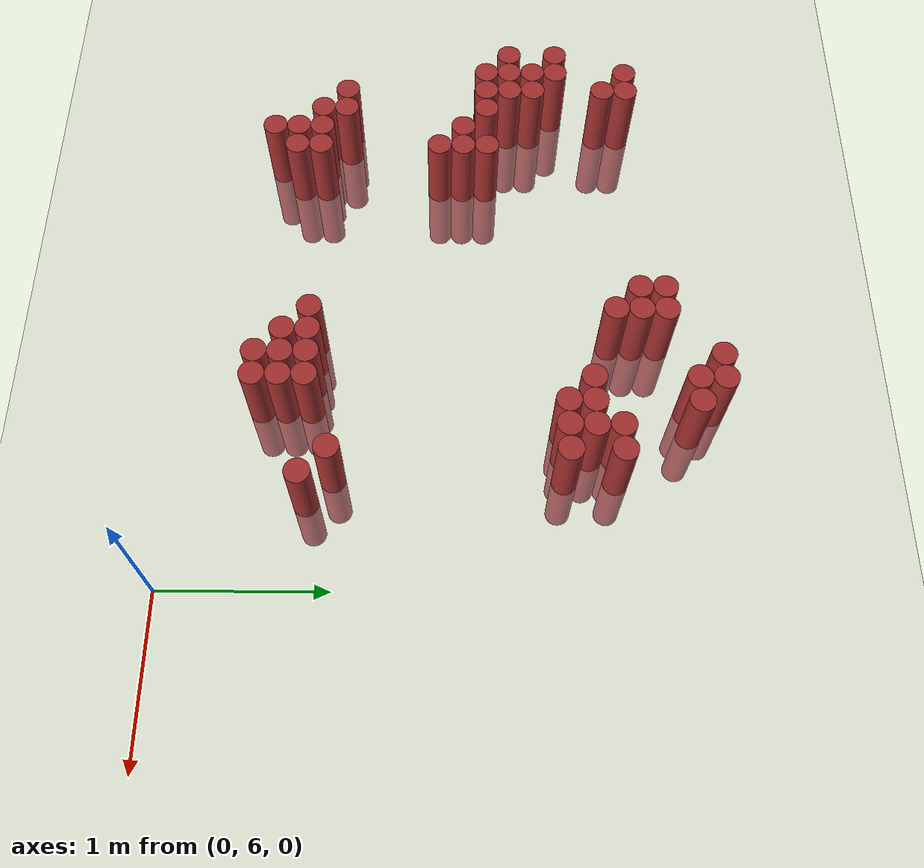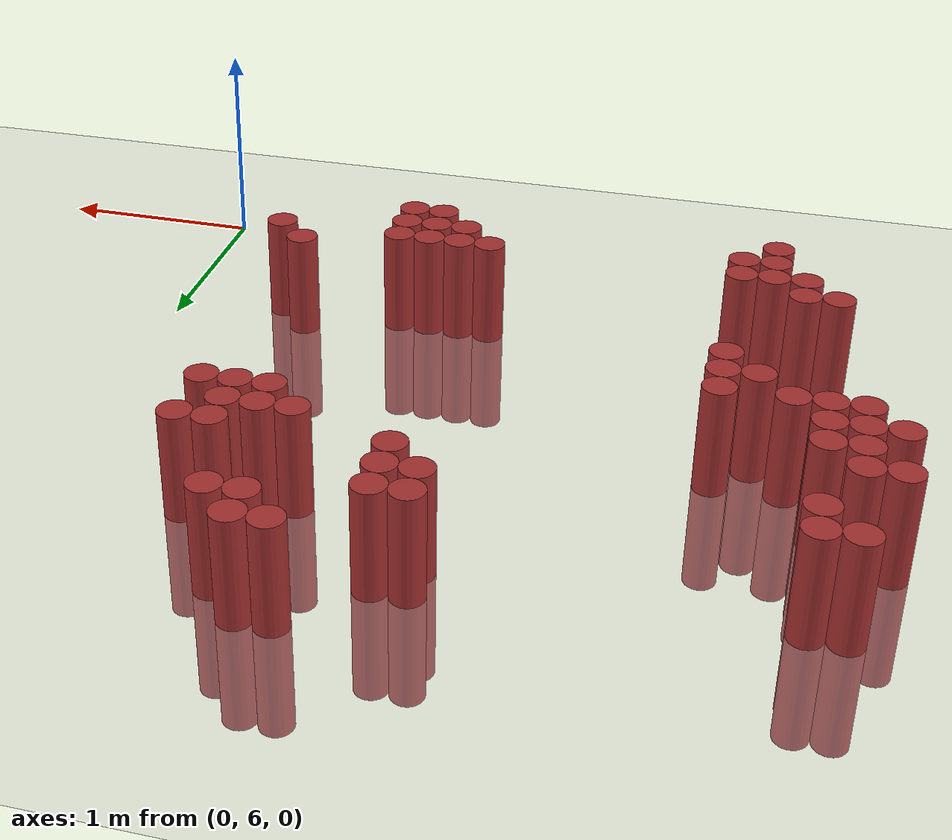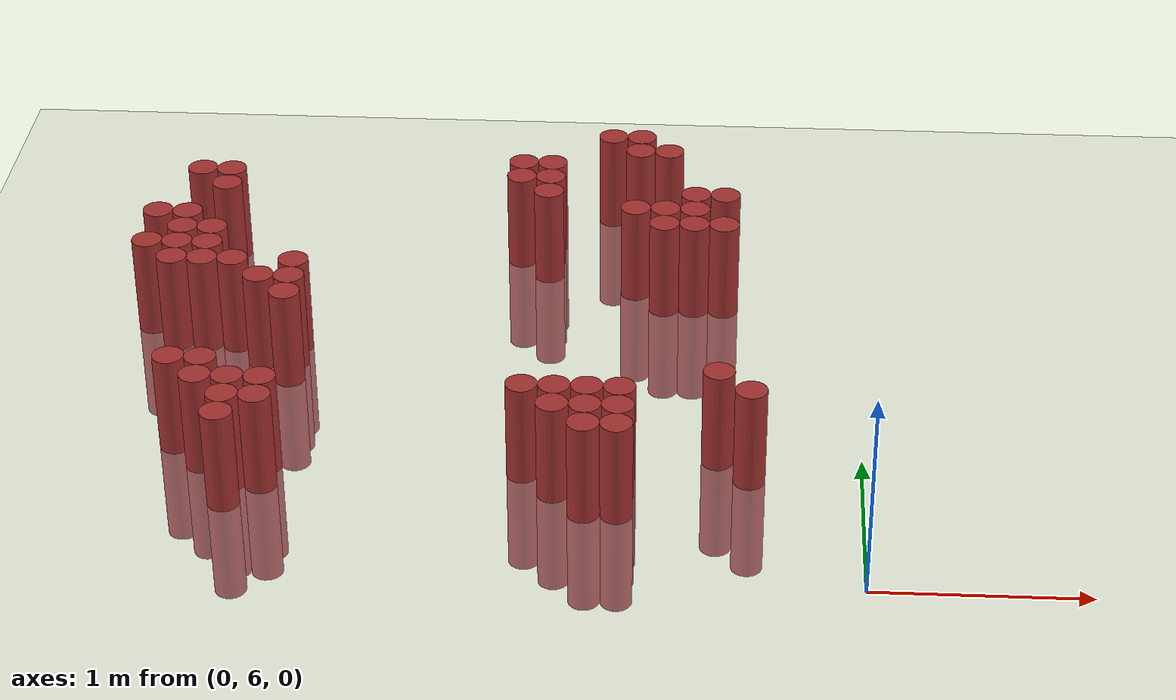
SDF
<sdf version="1.6">
 <world name="default">
  <model name="ground_plane">
   <static>1</static>
   <link name="link">
    <collision name="collision">
     <geometry><plane><normal>0 0 1</normal><size>100 100</size></plane></geometry>
     <surface><friction><ode><mu>100</mu><mu2>50</mu2></ode></friction></surface>
    </collision>
    <visual name="visual">
     <cast_shadows>0</cast_shadows>
     <geometry><plane><normal>0 0 1</normal><size>100 100</size></plane></geometry>
     <material>
      <script><uri>file://media/materials/scripts/gazebo.material</uri><name>Gazebo/Grey</name></script>
     </material>
    </visual>
   </link>
  </model>
  <model name="unit_cylinder_173">
   <static>1</static>
   <pose>-3.525000 8.025000 0.000000 0.000000 0.000000 0.000000</pose>
   <link name="link">
    <inertial>
     <mass>1</mass>
     <inertia><ixx>0.145833</ixx><ixy>0</ixy><ixz>0</ixz><iyy>0.145833</iyy><iyz>0</iyz><izz>0.125</izz></inertia>
    </inertial>
    <collision name="collision">
     <geometry><cylinder><radius>0.075000</radius><length>1</length></cylinder></geometry>
    </collision>
    <visual name="visual">
     <geometry><cylinder><radius>0.075000</radius><length>1</length></cylinder></geometry>
     <material>
      <ambient>0.648000 0.192000 0.192000 1</ambient>
      <diffuse>0.648000 0.192000 0.192000 1</diffuse>
     </material>
     <material>
      <script><name>Gazebo/Grey</name><uri>file://media/materials/scripts/gazebo.material</uri></script>
     </material>
    </visual>
   </link>
  </model>
  <model name="unit_cylinder_174">
   <static>1</static>
   <pose>-3.525000 8.325000 0.000000 0.000000 0.000000 0.000000</pose>
   <link name="link">
    <inertial>
     <mass>1</mass>
     <inertia><ixx>0.145833</ixx><ixy>0</ixy><ixz>0</ixz><iyy>0.145833</iyy><iyz>0</iyz><izz>0.125</izz></inertia>
    </inertial>
    <collision name="collision">
     <geometry><cylinder><radius>0.075000</radius><length>1</length></cylinder></geometry>
    </collision>
    <visual name="visual">
     <geometry><cylinder><radius>0.075000</radius><length>1</length></cylinder></geometry>
     <material>
      <ambient>0.648000 0.192000 0.192000 1</ambient>
      <diffuse>0.648000 0.192000 0.192000 1</diffuse>
     </material>
     <material>
      <script><name>Gazebo/Grey</name><uri>file://media/materials/scripts/gazebo.material</uri></script>
     </material>
    </visual>
   </link>
  </model>
  <model name="unit_cylinder_175">
   <static>1</static>
   <pose>-3.375000 7.875000 0.000000 0.000000 0.000000 0.000000</pose>
   <link name="link">
    <inertial>
     <mass>1</mass>
     <inertia><ixx>0.145833</ixx><ixy>0</ixy><ixz>0</ixz><iyy>0.145833</iyy><iyz>0</iyz><izz>0.125</izz></inertia>
    </inertial>
    <collision name="collision">
     <geometry><cylinder><radius>0.075000</radius><length>1</length></cylinder></geometry>
    </collision>
    <visual name="visual">
     <geometry><cylinder><radius>0.075000</radius><length>1</length></cylinder></geometry>
     <material>
      <ambient>0.648000 0.192000 0.192000 1</ambient>
      <diffuse>0.648000 0.192000 0.192000 1</diffuse>
     </material>
     <material>
      <script><name>Gazebo/Grey</name><uri>file://media/materials/scripts/gazebo.material</uri></script>
     </material>
    </visual>
   </link>
  </model>
  <model name="unit_cylinder_176">
   <static>1</static>
   <pose>-3.375000 8.025000 0.000000 0.000000 0.000000 0.000000</pose>
   <link name="link">
    <inertial>
     <mass>1</mass>
     <inertia><ixx>0.145833</ixx><ixy>0</ixy><ixz>0</ixz><iyy>0.145833</iyy><iyz>0</iyz><izz>0.125</izz></inertia>
    </inertial>
    <collision name="collision">
     <geometry><cylinder><radius>0.075000</radius><length>1</length></cylinder></geometry>
    </collision>
    <visual name="visual">
     <geometry><cylinder><radius>0.075000</radius><length>1</length></cylinder></geometry>
     <material>
      <ambient>0.648000 0.192000 0.192000 1</ambient>
      <diffuse>0.648000 0.192000 0.192000 1</diffuse>
     </material>
     <material>
      <script><name>Gazebo/Grey</name><uri>file://media/materials/scripts/gazebo.material</uri></script>
     </material>
    </visual>
   </link>
  </model>
  <model name="unit_cylinder_177">
   <static>1</static>
   <pose>-3.375000 8.175000 0.000000 0.000000 0.000000 0.000000</pose>
   <link name="link">
    <inertial>
     <mass>1</mass>
     <inertia><ixx>0.145833</ixx><ixy>0</ixy><ixz>0</ixz><iyy>0.145833</iyy><iyz>0</iyz><izz>0.125</izz></inertia>
    </inertial>
    <collision name="collision">
     <geometry><cylinder><radius>0.075000</radius><length>1</length></cylinder></geometry>
    </collision>
    <visual name="visual">
     <geometry><cylinder><radius>0.075000</radius><length>1</length></cylinder></geometry>
     <material>
      <ambient>0.648000 0.192000 0.192000 1</ambient>
      <diffuse>0.648000 0.192000 0.192000 1</diffuse>
     </material>
     <material>
      <script><name>Gazebo/Grey</name><uri>file://media/materials/scripts/gazebo.material</uri></script>
     </material>
    </visual>
   </link>
  </model>
  <model name="unit_cylinder_178">
   <static>1</static>
   <pose>-3.375000 8.325000 0.000000 0.000000 0.000000 0.000000</pose>
   <link name="link">
    <inertial>
     <mass>1</mass>
     <inertia><ixx>0.145833</ixx><ixy>0</ixy><ixz>0</ixz><iyy>0.145833</iyy><iyz>0</iyz><izz>0.125</izz></inertia>
    </inertial>
    <collision name="collision">
     <geometry><cylinder><radius>0.075000</radius><length>1</length></cylinder></geometry>
    </collision>
    <visual name="visual">
     <geometry><cylinder><radius>0.075000</radius><length>1</length></cylinder></geometry>
     <material>
      <ambient>0.648000 0.192000 0.192000 1</ambient>
      <diffuse>0.648000 0.192000 0.192000 1</diffuse>
     </material>
     <material>
      <script><name>Gazebo/Grey</name><uri>file://media/materials/scripts/gazebo.material</uri></script>
     </material>
    </visual>
   </link>
  </model>
  <model name="unit_cylinder_179">
   <static>1</static>
   <pose>-3.375000 8.775000 0.000000 0.000000 0.000000 0.000000</pose>
   <link name="link">
    <inertial>
     <mass>1</mass>
     <inertia><ixx>0.145833</ixx><ixy>0</ixy><ixz>0</ixz><iyy>0.145833</iyy><iyz>0</iyz><izz>0.125</izz></inertia>
    </inertial>
    <collision name="collision">
     <geometry><cylinder><radius>0.075000</radius><length>1</length></cylinder></geometry>
    </collision>
    <visual name="visual">
     <geometry><cylinder><radius>0.075000</radius><length>1</length></cylinder></geometry>
     <material>
      <ambient>0.648000 0.192000 0.192000 1</ambient>
      <diffuse>0.648000 0.192000 0.192000 1</diffuse>
     </material>
     <material>
      <script><name>Gazebo/Grey</name><uri>file://media/materials/scripts/gazebo.material</uri></script>
     </material>
    </visual>
   </link>
  </model>
  <model name="unit_cylinder_181">
   <static>1</static>
   <pose>-3.225000 6.975000 0.000000 0.000000 0.000000 0.000000</pose>
   <link name="link">
    <inertial>
     <mass>1</mass>
     <inertia><ixx>0.145833</ixx><ixy>0</ixy><ixz>0</ixz><iyy>0.145833</iyy><iyz>0</iyz><izz>0.125</izz></inertia>
    </inertial>
    <collision name="collision">
     <geometry><cylinder><radius>0.075000</radius><length>1</length></cylinder></geometry>
    </collision>
    <visual name="visual">
     <geometry><cylinder><radius>0.075000</radius><length>1</length></cylinder></geometry>
     <material>
      <ambient>0.648000 0.192000 0.192000 1</ambient>
      <diffuse>0.648000 0.192000 0.192000 1</diffuse>
     </material>
     <material>
      <script><name>Gazebo/Grey</name><uri>file://media/materials/scripts/gazebo.material</uri></script>
     </material>
    </visual>
   </link>
  </model>
  <model name="unit_cylinder_182">
   <static>1</static>
   <pose>-3.225000 7.875000 0.000000 0.000000 0.000000 0.000000</pose>
   <link name="link">
    <inertial>
     <mass>1</mass>
     <inertia><ixx>0.145833</ixx><ixy>0</ixy><ixz>0</ixz><iyy>0.145833</iyy><iyz>0</iyz><izz>0.125</izz></inertia>
    </inertial>
    <collision name="collision">
     <geometry><cylinder><radius>0.075000</radius><length>1</length></cylinder></geometry>
    </collision>
    <visual name="visual">
     <geometry><cylinder><radius>0.075000</radius><length>1</length></cylinder></geometry>
     <material>
      <ambient>0.648000 0.192000 0.192000 1</ambient>
      <diffuse>0.648000 0.192000 0.192000 1</diffuse>
     </material>
     <material>
      <script><name>Gazebo/Grey</name><uri>file://media/materials/scripts/gazebo.material</uri></script>
     </material>
    </visual>
   </link>
  </model>
  <model name="unit_cylinder_183">
   <static>1</static>
   <pose>-3.225000 8.025000 0.000000 0.000000 0.000000 0.000000</pose>
   <link name="link">
    <inertial>
     <mass>1</mass>
     <inertia><ixx>0.145833</ixx><ixy>0</ixy><ixz>0</ixz><iyy>0.145833</iyy><iyz>0</iyz><izz>0.125</izz></inertia>
    </inertial>
    <collision name="collision">
     <geometry><cylinder><radius>0.075000</radius><length>1</length></cylinder></geometry>
    </collision>
    <visual name="visual">
     <geometry><cylinder><radius>0.075000</radius><length>1</length></cylinder></geometry>
     <material>
      <ambient>0.648000 0.192000 0.192000 1</ambient>
      <diffuse>0.648000 0.192000 0.192000 1</diffuse>
     </material>
     <material>
      <script><name>Gazebo/Grey</name><uri>file://media/materials/scripts/gazebo.material</uri></script>
     </material>
    </visual>
   </link>
  </model>
  <model name="unit_cylinder_184">
   <static>1</static>
   <pose>-3.225000 8.175000 0.000000 0.000000 0.000000 0.000000</pose>
   <link name="link">
    <inertial>
     <mass>1</mass>
     <inertia><ixx>0.145833</ixx><ixy>0</ixy><ixz>0</ixz><iyy>0.145833</iyy><iyz>0</iyz><izz>0.125</izz></inertia>
    </inertial>
    <collision name="collision">
     <geometry><cylinder><radius>0.075000</radius><length>1</length></cylinder></geometry>
    </collision>
    <visual name="visual">
     <geometry><cylinder><radius>0.075000</radius><length>1</length></cylinder></geometry>
     <material>
      <ambient>0.648000 0.192000 0.192000 1</ambient>
      <diffuse>0.648000 0.192000 0.192000 1</diffuse>
     </material>
     <material>
      <script><name>Gazebo/Grey</name><uri>file://media/materials/scripts/gazebo.material</uri></script>
     </material>
    </visual>
   </link>
  </model>
  <model name="unit_cylinder_185">
   <static>1</static>
   <pose>-3.225000 8.625000 0.000000 0.000000 0.000000 0.000000</pose>
   <link name="link">
    <inertial>
     <mass>1</mass>
     <inertia><ixx>0.145833</ixx><ixy>0</ixy><ixz>0</ixz><iyy>0.145833</iyy><iyz>0</iyz><izz>0.125</izz></inertia>
    </inertial>
    <collision name="collision">
     <geometry><cylinder><radius>0.075000</radius><length>1</length></cylinder></geometry>
    </collision>
    <visual name="visual">
     <geometry><cylinder><radius>0.075000</radius><length>1</length></cylinder></geometry>
     <material>
      <ambient>0.648000 0.192000 0.192000 1</ambient>
      <diffuse>0.648000 0.192000 0.192000 1</diffuse>
     </material>
     <material>
      <script><name>Gazebo/Grey</name><uri>file://media/materials/scripts/gazebo.material</uri></script>
     </material>
    </visual>
   </link>
  </model>
  <model name="unit_cylinder_186">
   <static>1</static>
   <pose>-3.225000 8.775000 0.000000 0.000000 0.000000 0.000000</pose>
   <link name="link">
    <inertial>
     <mass>1</mass>
     <inertia><ixx>0.145833</ixx><ixy>0</ixy><ixz>0</ixz><iyy>0.145833</iyy><iyz>0</iyz><izz>0.125</izz></inertia>
    </inertial>
    <collision name="collision">
     <geometry><cylinder><radius>0.075000</radius><length>1</length></cylinder></geometry>
    </collision>
    <visual name="visual">
     <geometry><cylinder><radius>0.075000</radius><length>1</length></cylinder></geometry>
     <material>
      <ambient>0.648000 0.192000 0.192000 1</ambient>
      <diffuse>0.648000 0.192000 0.192000 1</diffuse>
     </material>
     <material>
      <script><name>Gazebo/Grey</name><uri>file://media/materials/scripts/gazebo.material</uri></script>
     </material>
    </visual>
   </link>
  </model>
  <model name="unit_cylinder_190">
   <static>1</static>
   <pose>-3.075000 6.825000 0.000000 0.000000 0.000000 0.000000</pose>
   <link name="link">
    <inertial>
     <mass>1</mass>
     <inertia><ixx>0.145833</ixx><ixy>0</ixy><ixz>0</ixz><iyy>0.145833</iyy><iyz>0</iyz><izz>0.125</izz></inertia>
    </inertial>
    <collision name="collision">
     <geometry><cylinder><radius>0.075000</radius><length>1</length></cylinder></geometry>
    </collision>
    <visual name="visual">
     <geometry><cylinder><radius>0.075000</radius><length>1</length></cylinder></geometry>
     <material>
      <ambient>0.648000 0.192000 0.192000 1</ambient>
      <diffuse>0.648000 0.192000 0.192000 1</diffuse>
     </material>
     <material>
      <script><name>Gazebo/Grey</name><uri>file://media/materials/scripts/gazebo.material</uri></script>
     </material>
    </visual>
   </link>
  </model>
  <model name="unit_cylinder_191">
   <static>1</static>
   <pose>-3.075000 6.975000 0.000000 0.000000 0.000000 0.000000</pose>
   <link name="link">
    <inertial>
     <mass>1</mass>
     <inertia><ixx>0.145833</ixx><ixy>0</ixy><ixz>0</ixz><iyy>0.145833</iyy><iyz>0</iyz><izz>0.125</izz></inertia>
    </inertial>
    <collision name="collision">
     <geometry><cylinder><radius>0.075000</radius><length>1</length></cylinder></geometry>
    </collision>
    <visual name="visual">
     <geometry><cylinder><radius>0.075000</radius><length>1</length></cylinder></geometry>
     <material>
      <ambient>0.648000 0.192000 0.192000 1</ambient>
      <diffuse>0.648000 0.192000 0.192000 1</diffuse>
     </material>
     <material>
      <script><name>Gazebo/Grey</name><uri>file://media/materials/scripts/gazebo.material</uri></script>
     </material>
    </visual>
   </link>
  </model>
  <model name="unit_cylinder_192">
   <static>1</static>
   <pose>-3.075000 7.875000 0.000000 0.000000 0.000000 0.000000</pose>
   <link name="link">
    <inertial>
     <mass>1</mass>
     <inertia><ixx>0.145833</ixx><ixy>0</ixy><ixz>0</ixz><iyy>0.145833</iyy><iyz>0</iyz><izz>0.125</izz></inertia>
    </inertial>
    <collision name="collision">
     <geometry><cylinder><radius>0.075000</radius><length>1</length></cylinder></geometry>
    </collision>
    <visual name="visual">
     <geometry><cylinder><radius>0.075000</radius><length>1</length></cylinder></geometry>
     <material>
      <ambient>0.648000 0.192000 0.192000 1</ambient>
      <diffuse>0.648000 0.192000 0.192000 1</diffuse>
     </material>
     <material>
      <script><name>Gazebo/Grey</name><uri>file://media/materials/scripts/gazebo.material</uri></script>
     </material>
    </visual>
   </link>
  </model>
  <model name="unit_cylinder_193">
   <static>1</static>
   <pose>-2.925000 6.525000 0.000000 0.000000 0.000000 0.000000</pose>
   <link name="link">
    <inertial>
     <mass>1</mass>
     <inertia><ixx>0.145833</ixx><ixy>0</ixy><ixz>0</ixz><iyy>0.145833</iyy><iyz>0</iyz><izz>0.125</izz></inertia>
    </inertial>
    <collision name="collision">
     <geometry><cylinder><radius>0.075000</radius><length>1</length></cylinder></geometry>
    </collision>
    <visual name="visual">
     <geometry><cylinder><radius>0.075000</radius><length>1</length></cylinder></geometry>
     <material>
      <ambient>0.648000 0.192000 0.192000 1</ambient>
      <diffuse>0.648000 0.192000 0.192000 1</diffuse>
     </material>
     <material>
      <script><name>Gazebo/Grey</name><uri>file://media/materials/scripts/gazebo.material</uri></script>
     </material>
    </visual>
   </link>
  </model>
  <model name="unit_cylinder_194">
   <static>1</static>
   <pose>-2.925000 6.675000 0.000000 0.000000 0.000000 0.000000</pose>
   <link name="link">
    <inertial>
     <mass>1</mass>
     <inertia><ixx>0.145833</ixx><ixy>0</ixy><ixz>0</ixz><iyy>0.145833</iyy><iyz>0</iyz><izz>0.125</izz></inertia>
    </inertial>
    <collision name="collision">
     <geometry><cylinder><radius>0.075000</radius><length>1</length></cylinder></geometry>
    </collision>
    <visual name="visual">
     <geometry><cylinder><radius>0.075000</radius><length>1</length></cylinder></geometry>
     <material>
      <ambient>0.648000 0.192000 0.192000 1</ambient>
      <diffuse>0.648000 0.192000 0.192000 1</diffuse>
     </material>
     <material>
      <script><name>Gazebo/Grey</name><uri>file://media/materials/scripts/gazebo.material</uri></script>
     </material>
    </visual>
   </link>
  </model>
  <model name="unit_cylinder_195">
   <static>1</static>
   <pose>-2.925000 6.825000 0.000000 0.000000 0.000000 0.000000</pose>
   <link name="link">
    <inertial>
     <mass>1</mass>
     <inertia><ixx>0.145833</ixx><ixy>0</ixy><ixz>0</ixz><iyy>0.145833</iyy><iyz>0</iyz><izz>0.125</izz></inertia>
    </inertial>
    <collision name="collision">
     <geometry><cylinder><radius>0.075000</radius><length>1</length></cylinder></geometry>
    </collision>
    <visual name="visual">
     <geometry><cylinder><radius>0.075000</radius><length>1</length></cylinder></geometry>
     <material>
      <ambient>0.648000 0.192000 0.192000 1</ambient>
      <diffuse>0.648000 0.192000 0.192000 1</diffuse>
     </material>
     <material>
      <script><name>Gazebo/Grey</name><uri>file://media/materials/scripts/gazebo.material</uri></script>
     </material>
    </visual>
   </link>
  </model>
  <model name="unit_cylinder_196">
   <static>1</static>
   <pose>-2.925000 7.725000 0.000000 0.000000 0.000000 0.000000</pose>
   <link name="link">
    <inertial>
     <mass>1</mass>
     <inertia><ixx>0.145833</ixx><ixy>0</ixy><ixz>0</ixz><iyy>0.145833</iyy><iyz>0</iyz><izz>0.125</izz></inertia>
    </inertial>
    <collision name="collision">
     <geometry><cylinder><radius>0.075000</radius><length>1</length></cylinder></geometry>
    </collision>
    <visual name="visual">
     <geometry><cylinder><radius>0.075000</radius><length>1</length></cylinder></geometry>
     <material>
      <ambient>0.648000 0.192000 0.192000 1</ambient>
      <diffuse>0.648000 0.192000 0.192000 1</diffuse>
     </material>
     <material>
      <script><name>Gazebo/Grey</name><uri>file://media/materials/scripts/gazebo.material</uri></script>
     </material>
    </visual>
   </link>
  </model>
  <model name="unit_cylinder_197">
   <static>1</static>
   <pose>-2.775000 6.675000 0.000000 0.000000 0.000000 0.000000</pose>
   <link name="link">
    <inertial>
     <mass>1</mass>
     <inertia><ixx>0.145833</ixx><ixy>0</ixy><ixz>0</ixz><iyy>0.145833</iyy><iyz>0</iyz><izz>0.125</izz></inertia>
    </inertial>
    <collision name="collision">
     <geometry><cylinder><radius>0.075000</radius><length>1</length></cylinder></geometry>
    </collision>
    <visual name="visual">
     <geometry><cylinder><radius>0.075000</radius><length>1</length></cylinder></geometry>
     <material>
      <ambient>0.648000 0.192000 0.192000 1</ambient>
      <diffuse>0.648000 0.192000 0.192000 1</diffuse>
     </material>
     <material>
      <script><name>Gazebo/Grey</name><uri>file://media/materials/scripts/gazebo.material</uri></script>
     </material>
    </visual>
   </link>
  </model>
  <model name="unit_cylinder_198">
   <static>1</static>
   <pose>-2.775000 6.825000 0.000000 0.000000 0.000000 0.000000</pose>
   <link name="link">
    <inertial>
     <mass>1</mass>
     <inertia><ixx>0.145833</ixx><ixy>0</ixy><ixz>0</ixz><iyy>0.145833</iyy><iyz>0</iyz><izz>0.125</izz></inertia>
    </inertial>
    <collision name="collision">
     <geometry><cylinder><radius>0.075000</radius><length>1</length></cylinder></geometry>
    </collision>
    <visual name="visual">
     <geometry><cylinder><radius>0.075000</radius><length>1</length></cylinder></geometry>
     <material>
      <ambient>0.648000 0.192000 0.192000 1</ambient>
      <diffuse>0.648000 0.192000 0.192000 1</diffuse>
     </material>
     <material>
      <script><name>Gazebo/Grey</name><uri>file://media/materials/scripts/gazebo.material</uri></script>
     </material>
    </visual>
   </link>
  </model>
  <model name="unit_cylinder_199">
   <static>1</static>
   <pose>-2.775000 7.575000 0.000000 0.000000 0.000000 0.000000</pose>
   <link name="link">
    <inertial>
     <mass>1</mass>
     <inertia><ixx>0.145833</ixx><ixy>0</ixy><ixz>0</ixz><iyy>0.145833</iyy><iyz>0</iyz><izz>0.125</izz></inertia>
    </inertial>
    <collision name="collision">
     <geometry><cylinder><radius>0.075000</radius><length>1</length></cylinder></geometry>
    </collision>
    <visual name="visual">
     <geometry><cylinder><radius>0.075000</radius><length>1</length></cylinder></geometry>
     <material>
      <ambient>0.648000 0.192000 0.192000 1</ambient>
      <diffuse>0.648000 0.192000 0.192000 1</diffuse>
     </material>
     <material>
      <script><name>Gazebo/Grey</name><uri>file://media/materials/scripts/gazebo.material</uri></script>
     </material>
    </visual>
   </link>
  </model>
  <model name="unit_cylinder_200">
   <static>1</static>
   <pose>-2.775000 7.725000 0.000000 0.000000 0.000000 0.000000</pose>
   <link name="link">
    <inertial>
     <mass>1</mass>
     <inertia><ixx>0.145833</ixx><ixy>0</ixy><ixz>0</ixz><iyy>0.145833</iyy><iyz>0</iyz><izz>0.125</izz></inertia>
    </inertial>
    <collision name="collision">
     <geometry><cylinder><radius>0.075000</radius><length>1</length></cylinder></geometry>
    </collision>
    <visual name="visual">
     <geometry><cylinder><radius>0.075000</radius><length>1</length></cylinder></geometry>
     <material>
      <ambient>0.648000 0.192000 0.192000 1</ambient>
      <diffuse>0.648000 0.192000 0.192000 1</diffuse>
     </material>
     <material>
      <script><name>Gazebo/Grey</name><uri>file://media/materials/scripts/gazebo.material</uri></script>
     </material>
    </visual>
   </link>
  </model>
  <model name="unit_cylinder_201">
   <static>1</static>
   <pose>-2.775000 7.875000 0.000000 0.000000 0.000000 0.000000</pose>
   <link name="link">
    <inertial>
     <mass>1</mass>
     <inertia><ixx>0.145833</ixx><ixy>0</ixy><ixz>0</ixz><iyy>0.145833</iyy><iyz>0</iyz><izz>0.125</izz></inertia>
    </inertial>
    <collision name="collision">
     <geometry><cylinder><radius>0.075000</radius><length>1</length></cylinder></geometry>
    </collision>
    <visual name="visual">
     <geometry><cylinder><radius>0.075000</radius><length>1</length></cylinder></geometry>
     <material>
      <ambient>0.648000 0.192000 0.192000 1</ambient>
      <diffuse>0.648000 0.192000 0.192000 1</diffuse>
     </material>
     <material>
      <script><name>Gazebo/Grey</name><uri>file://media/materials/scripts/gazebo.material</uri></script>
     </material>
    </visual>
   </link>
  </model>
  <model name="unit_cylinder_210">
   <static>1</static>
   <pose>-1.725000 8.775000 0.000000 0.000000 0.000000 0.000000</pose>
   <link name="link">
    <inertial>
     <mass>1</mass>
     <inertia><ixx>0.145833</ixx><ixy>0</ixy><ixz>0</ixz><iyy>0.145833</iyy><iyz>0</iyz><izz>0.125</izz></inertia>
    </inertial>
    <collision name="collision">
     <geometry><cylinder><radius>0.075000</radius><length>1</length></cylinder></geometry>
    </collision>
    <visual name="visual">
     <geometry><cylinder><radius>0.075000</radius><length>1</length></cylinder></geometry>
     <material>
      <ambient>0.648000 0.192000 0.192000 1</ambient>
      <diffuse>0.648000 0.192000 0.192000 1</diffuse>
     </material>
     <material>
      <script><name>Gazebo/Grey</name><uri>file://media/materials/scripts/gazebo.material</uri></script>
     </material>
    </visual>
   </link>
  </model>
  <model name="unit_cylinder_211">
   <static>1</static>
   <pose>-1.725000 8.925000 0.000000 0.000000 0.000000 0.000000</pose>
   <link name="link">
    <inertial>
     <mass>1</mass>
     <inertia><ixx>0.145833</ixx><ixy>0</ixy><ixz>0</ixz><iyy>0.145833</iyy><iyz>0</iyz><izz>0.125</izz></inertia>
    </inertial>
    <collision name="collision">
     <geometry><cylinder><radius>0.075000</radius><length>1</length></cylinder></geometry>
    </collision>
    <visual name="visual">
     <geometry><cylinder><radius>0.075000</radius><length>1</length></cylinder></geometry>
     <material>
      <ambient>0.648000 0.192000 0.192000 1</ambient>
      <diffuse>0.648000 0.192000 0.192000 1</diffuse>
     </material>
     <material>
      <script><name>Gazebo/Grey</name><uri>file://media/materials/scripts/gazebo.material</uri></script>
     </material>
    </visual>
   </link>
  </model>
  <model name="unit_cylinder_214">
   <static>1</static>
   <pose>-1.575000 6.825000 0.000000 0.000000 0.000000 0.000000</pose>
   <link name="link">
    <inertial>
     <mass>1</mass>
     <inertia><ixx>0.145833</ixx><ixy>0</ixy><ixz>0</ixz><iyy>0.145833</iyy><iyz>0</iyz><izz>0.125</izz></inertia>
    </inertial>
    <collision name="collision">
     <geometry><cylinder><radius>0.075000</radius><length>1</length></cylinder></geometry>
    </collision>
    <visual name="visual">
     <geometry><cylinder><radius>0.075000</radius><length>1</length></cylinder></geometry>
     <material>
      <ambient>0.648000 0.192000 0.192000 1</ambient>
      <diffuse>0.648000 0.192000 0.192000 1</diffuse>
     </material>
     <material>
      <script><name>Gazebo/Grey</name><uri>file://media/materials/scripts/gazebo.material</uri></script>
     </material>
    </visual>
   </link>
  </model>
  <model name="unit_cylinder_215">
   <static>1</static>
   <pose>-1.575000 8.625000 0.000000 0.000000 0.000000 0.000000</pose>
   <link name="link">
    <inertial>
     <mass>1</mass>
     <inertia><ixx>0.145833</ixx><ixy>0</ixy><ixz>0</ixz><iyy>0.145833</iyy><iyz>0</iyz><izz>0.125</izz></inertia>
    </inertial>
    <collision name="collision">
     <geometry><cylinder><radius>0.075000</radius><length>1</length></cylinder></geometry>
    </collision>
    <visual name="visual">
     <geometry><cylinder><radius>0.075000</radius><length>1</length></cylinder></geometry>
     <material>
      <ambient>0.648000 0.192000 0.192000 1</ambient>
      <diffuse>0.648000 0.192000 0.192000 1</diffuse>
     </material>
     <material>
      <script><name>Gazebo/Grey</name><uri>file://media/materials/scripts/gazebo.material</uri></script>
     </material>
    </visual>
   </link>
  </model>
  <model name="unit_cylinder_216">
   <static>1</static>
   <pose>-1.575000 8.775000 0.000000 0.000000 0.000000 0.000000</pose>
   <link name="link">
    <inertial>
     <mass>1</mass>
     <inertia><ixx>0.145833</ixx><ixy>0</ixy><ixz>0</ixz><iyy>0.145833</iyy><iyz>0</iyz><izz>0.125</izz></inertia>
    </inertial>
    <collision name="collision">
     <geometry><cylinder><radius>0.075000</radius><length>1</length></cylinder></geometry>
    </collision>
    <visual name="visual">
     <geometry><cylinder><radius>0.075000</radius><length>1</length></cylinder></geometry>
     <material>
      <ambient>0.648000 0.192000 0.192000 1</ambient>
      <diffuse>0.648000 0.192000 0.192000 1</diffuse>
     </material>
     <material>
      <script><name>Gazebo/Grey</name><uri>file://media/materials/scripts/gazebo.material</uri></script>
     </material>
    </visual>
   </link>
  </model>
  <model name="unit_cylinder_217">
   <static>1</static>
   <pose>-1.575000 8.925000 0.000000 0.000000 0.000000 0.000000</pose>
   <link name="link">
    <inertial>
     <mass>1</mass>
     <inertia><ixx>0.145833</ixx><ixy>0</ixy><ixz>0</ixz><iyy>0.145833</iyy><iyz>0</iyz><izz>0.125</izz></inertia>
    </inertial>
    <collision name="collision">
     <geometry><cylinder><radius>0.075000</radius><length>1</length></cylinder></geometry>
    </collision>
    <visual name="visual">
     <geometry><cylinder><radius>0.075000</radius><length>1</length></cylinder></geometry>
     <material>
      <ambient>0.648000 0.192000 0.192000 1</ambient>
      <diffuse>0.648000 0.192000 0.192000 1</diffuse>
     </material>
     <material>
      <script><name>Gazebo/Grey</name><uri>file://media/materials/scripts/gazebo.material</uri></script>
     </material>
    </visual>
   </link>
  </model>
  <model name="unit_cylinder_219">
   <static>1</static>
   <pose>-1.425000 6.675000 0.000000 0.000000 0.000000 0.000000</pose>
   <link name="link">
    <inertial>
     <mass>1</mass>
     <inertia><ixx>0.145833</ixx><ixy>0</ixy><ixz>0</ixz><iyy>0.145833</iyy><iyz>0</iyz><izz>0.125</izz></inertia>
    </inertial>
    <collision name="collision">
     <geometry><cylinder><radius>0.075000</radius><length>1</length></cylinder></geometry>
    </collision>
    <visual name="visual">
     <geometry><cylinder><radius>0.075000</radius><length>1</length></cylinder></geometry>
     <material>
      <ambient>0.648000 0.192000 0.192000 1</ambient>
      <diffuse>0.648000 0.192000 0.192000 1</diffuse>
     </material>
     <material>
      <script><name>Gazebo/Grey</name><uri>file://media/materials/scripts/gazebo.material</uri></script>
     </material>
    </visual>
   </link>
  </model>
  <model name="unit_cylinder_220">
   <static>1</static>
   <pose>-1.425000 6.825000 0.000000 0.000000 0.000000 0.000000</pose>
   <link name="link">
    <inertial>
     <mass>1</mass>
     <inertia><ixx>0.145833</ixx><ixy>0</ixy><ixz>0</ixz><iyy>0.145833</iyy><iyz>0</iyz><izz>0.125</izz></inertia>
    </inertial>
    <collision name="collision">
     <geometry><cylinder><radius>0.075000</radius><length>1</length></cylinder></geometry>
    </collision>
    <visual name="visual">
     <geometry><cylinder><radius>0.075000</radius><length>1</length></cylinder></geometry>
     <material>
      <ambient>0.648000 0.192000 0.192000 1</ambient>
      <diffuse>0.648000 0.192000 0.192000 1</diffuse>
     </material>
     <material>
      <script><name>Gazebo/Grey</name><uri>file://media/materials/scripts/gazebo.material</uri></script>
     </material>
    </visual>
   </link>
  </model>
  <model name="unit_cylinder_221">
   <static>1</static>
   <pose>-1.275000 6.525000 0.000000 0.000000 0.000000 0.000000</pose>
   <link name="link">
    <inertial>
     <mass>1</mass>
     <inertia><ixx>0.145833</ixx><ixy>0</ixy><ixz>0</ixz><iyy>0.145833</iyy><iyz>0</iyz><izz>0.125</izz></inertia>
    </inertial>
    <collision name="collision">
     <geometry><cylinder><radius>0.075000</radius><length>1</length></cylinder></geometry>
    </collision>
    <visual name="visual">
     <geometry><cylinder><radius>0.075000</radius><length>1</length></cylinder></geometry>
     <material>
      <ambient>0.648000 0.192000 0.192000 1</ambient>
      <diffuse>0.648000 0.192000 0.192000 1</diffuse>
     </material>
     <material>
      <script><name>Gazebo/Grey</name><uri>file://media/materials/scripts/gazebo.material</uri></script>
     </material>
    </visual>
   </link>
  </model>
  <model name="unit_cylinder_222">
   <static>1</static>
   <pose>-1.275000 6.675000 0.000000 0.000000 0.000000 0.000000</pose>
   <link name="link">
    <inertial>
     <mass>1</mass>
     <inertia><ixx>0.145833</ixx><ixy>0</ixy><ixz>0</ixz><iyy>0.145833</iyy><iyz>0</iyz><izz>0.125</izz></inertia>
    </inertial>
    <collision name="collision">
     <geometry><cylinder><radius>0.075000</radius><length>1</length></cylinder></geometry>
    </collision>
    <visual name="visual">
     <geometry><cylinder><radius>0.075000</radius><length>1</length></cylinder></geometry>
     <material>
      <ambient>0.648000 0.192000 0.192000 1</ambient>
      <diffuse>0.648000 0.192000 0.192000 1</diffuse>
     </material>
     <material>
      <script><name>Gazebo/Grey</name><uri>file://media/materials/scripts/gazebo.material</uri></script>
     </material>
    </visual>
   </link>
  </model>
  <model name="unit_cylinder_223">
   <static>1</static>
   <pose>-1.275000 6.825000 0.000000 0.000000 0.000000 0.000000</pose>
   <link name="link">
    <inertial>
     <mass>1</mass>
     <inertia><ixx>0.145833</ixx><ixy>0</ixy><ixz>0</ixz><iyy>0.145833</iyy><iyz>0</iyz><izz>0.125</izz></inertia>
    </inertial>
    <collision name="collision">
     <geometry><cylinder><radius>0.075000</radius><length>1</length></cylinder></geometry>
    </collision>
    <visual name="visual">
     <geometry><cylinder><radius>0.075000</radius><length>1</length></cylinder></geometry>
     <material>
      <ambient>0.648000 0.192000 0.192000 1</ambient>
      <diffuse>0.648000 0.192000 0.192000 1</diffuse>
     </material>
     <material>
      <script><name>Gazebo/Grey</name><uri>file://media/materials/scripts/gazebo.material</uri></script>
     </material>
    </visual>
   </link>
  </model>
  <model name="unit_cylinder_224">
   <static>1</static>
   <pose>-1.275000 9.225000 0.000000 0.000000 0.000000 0.000000</pose>
   <link name="link">
    <inertial>
     <mass>1</mass>
     <inertia><ixx>0.145833</ixx><ixy>0</ixy><ixz>0</ixz><iyy>0.145833</iyy><iyz>0</iyz><izz>0.125</izz></inertia>
    </inertial>
    <collision name="collision">
     <geometry><cylinder><radius>0.075000</radius><length>1</length></cylinder></geometry>
    </collision>
    <visual name="visual">
     <geometry><cylinder><radius>0.075000</radius><length>1</length></cylinder></geometry>
     <material>
      <ambient>0.648000 0.192000 0.192000 1</ambient>
      <diffuse>0.648000 0.192000 0.192000 1</diffuse>
     </material>
     <material>
      <script><name>Gazebo/Grey</name><uri>file://media/materials/scripts/gazebo.material</uri></script>
     </material>
    </visual>
   </link>
  </model>
  <model name="unit_cylinder_227">
   <static>1</static>
   <pose>-1.125000 6.525000 0.000000 0.000000 0.000000 0.000000</pose>
   <link name="link">
    <inertial>
     <mass>1</mass>
     <inertia><ixx>0.145833</ixx><ixy>0</ixy><ixz>0</ixz><iyy>0.145833</iyy><iyz>0</iyz><izz>0.125</izz></inertia>
    </inertial>
    <collision name="collision">
     <geometry><cylinder><radius>0.075000</radius><length>1</length></cylinder></geometry>
    </collision>
    <visual name="visual">
     <geometry><cylinder><radius>0.075000</radius><length>1</length></cylinder></geometry>
     <material>
      <ambient>0.648000 0.192000 0.192000 1</ambient>
      <diffuse>0.648000 0.192000 0.192000 1</diffuse>
     </material>
     <material>
      <script><name>Gazebo/Grey</name><uri>file://media/materials/scripts/gazebo.material</uri></script>
     </material>
    </visual>
   </link>
  </model>
  <model name="unit_cylinder_228">
   <static>1</static>
   <pose>-1.125000 6.675000 0.000000 0.000000 0.000000 0.000000</pose>
   <link name="link">
    <inertial>
     <mass>1</mass>
     <inertia><ixx>0.145833</ixx><ixy>0</ixy><ixz>0</ixz><iyy>0.145833</iyy><iyz>0</iyz><izz>0.125</izz></inertia>
    </inertial>
    <collision name="collision">
     <geometry><cylinder><radius>0.075000</radius><length>1</length></cylinder></geometry>
    </collision>
    <visual name="visual">
     <geometry><cylinder><radius>0.075000</radius><length>1</length></cylinder></geometry>
     <material>
      <ambient>0.648000 0.192000 0.192000 1</ambient>
      <diffuse>0.648000 0.192000 0.192000 1</diffuse>
     </material>
     <material>
      <script><name>Gazebo/Grey</name><uri>file://media/materials/scripts/gazebo.material</uri></script>
     </material>
    </visual>
   </link>
  </model>
  <model name="unit_cylinder_229">
   <static>1</static>
   <pose>-1.125000 6.825000 0.000000 0.000000 0.000000 0.000000</pose>
   <link name="link">
    <inertial>
     <mass>1</mass>
     <inertia><ixx>0.145833</ixx><ixy>0</ixy><ixz>0</ixz><iyy>0.145833</iyy><iyz>0</iyz><izz>0.125</izz></inertia>
    </inertial>
    <collision name="collision">
     <geometry><cylinder><radius>0.075000</radius><length>1</length></cylinder></geometry>
    </collision>
    <visual name="visual">
     <geometry><cylinder><radius>0.075000</radius><length>1</length></cylinder></geometry>
     <material>
      <ambient>0.648000 0.192000 0.192000 1</ambient>
      <diffuse>0.648000 0.192000 0.192000 1</diffuse>
     </material>
     <material>
      <script><name>Gazebo/Grey</name><uri>file://media/materials/scripts/gazebo.material</uri></script>
     </material>
    </visual>
   </link>
  </model>
  <model name="unit_cylinder_230">
   <static>1</static>
   <pose>-1.125000 8.475000 0.000000 0.000000 0.000000 0.000000</pose>
   <link name="link">
    <inertial>
     <mass>1</mass>
     <inertia><ixx>0.145833</ixx><ixy>0</ixy><ixz>0</ixz><iyy>0.145833</iyy><iyz>0</iyz><izz>0.125</izz></inertia>
    </inertial>
    <collision name="collision">
     <geometry><cylinder><radius>0.075000</radius><length>1</length></cylinder></geometry>
    </collision>
    <visual name="visual">
     <geometry><cylinder><radius>0.075000</radius><length>1</length></cylinder></geometry>
     <material>
      <ambient>0.648000 0.192000 0.192000 1</ambient>
      <diffuse>0.648000 0.192000 0.192000 1</diffuse>
     </material>
     <material>
      <script><name>Gazebo/Grey</name><uri>file://media/materials/scripts/gazebo.material</uri></script>
     </material>
    </visual>
   </link>
  </model>
  <model name="unit_cylinder_231">
   <static>1</static>
   <pose>-1.125000 9.075000 0.000000 0.000000 0.000000 0.000000</pose>
   <link name="link">
    <inertial>
     <mass>1</mass>
     <inertia><ixx>0.145833</ixx><ixy>0</ixy><ixz>0</ixz><iyy>0.145833</iyy><iyz>0</iyz><izz>0.125</izz></inertia>
    </inertial>
    <collision name="collision">
     <geometry><cylinder><radius>0.075000</radius><length>1</length></cylinder></geometry>
    </collision>
    <visual name="visual">
     <geometry><cylinder><radius>0.075000</radius><length>1</length></cylinder></geometry>
     <material>
      <ambient>0.648000 0.192000 0.192000 1</ambient>
      <diffuse>0.648000 0.192000 0.192000 1</diffuse>
     </material>
     <material>
      <script><name>Gazebo/Grey</name><uri>file://media/materials/scripts/gazebo.material</uri></script>
     </material>
    </visual>
   </link>
  </model>
  <model name="unit_cylinder_232">
   <static>1</static>
   <pose>-1.125000 9.225000 0.000000 0.000000 0.000000 0.000000</pose>
   <link name="link">
    <inertial>
     <mass>1</mass>
     <inertia><ixx>0.145833</ixx><ixy>0</ixy><ixz>0</ixz><iyy>0.145833</iyy><iyz>0</iyz><izz>0.125</izz></inertia>
    </inertial>
    <collision name="collision">
     <geometry><cylinder><radius>0.075000</radius><length>1</length></cylinder></geometry>
    </collision>
    <visual name="visual">
     <geometry><cylinder><radius>0.075000</radius><length>1</length></cylinder></geometry>
     <material>
      <ambient>0.648000 0.192000 0.192000 1</ambient>
      <diffuse>0.648000 0.192000 0.192000 1</diffuse>
     </material>
     <material>
      <script><name>Gazebo/Grey</name><uri>file://media/materials/scripts/gazebo.material</uri></script>
     </material>
    </visual>
   </link>
  </model>
  <model name="unit_cylinder_237">
   <static>1</static>
   <pose>-0.975000 8.325000 0.000000 0.000000 0.000000 0.000000</pose>
   <link name="link">
    <inertial>
     <mass>1</mass>
     <inertia><ixx>0.145833</ixx><ixy>0</ixy><ixz>0</ixz><iyy>0.145833</iyy><iyz>0</iyz><izz>0.125</izz></inertia>
    </inertial>
    <collision name="collision">
     <geometry><cylinder><radius>0.075000</radius><length>1</length></cylinder></geometry>
    </collision>
    <visual name="visual">
     <geometry><cylinder><radius>0.075000</radius><length>1</length></cylinder></geometry>
     <material>
      <ambient>0.648000 0.192000 0.192000 1</ambient>
      <diffuse>0.648000 0.192000 0.192000 1</diffuse>
     </material>
     <material>
      <script><name>Gazebo/Grey</name><uri>file://media/materials/scripts/gazebo.material</uri></script>
     </material>
    </visual>
   </link>
  </model>
  <model name="unit_cylinder_238">
   <static>1</static>
   <pose>-0.975000 8.475000 0.000000 0.000000 0.000000 0.000000</pose>
   <link name="link">
    <inertial>
     <mass>1</mass>
     <inertia><ixx>0.145833</ixx><ixy>0</ixy><ixz>0</ixz><iyy>0.145833</iyy><iyz>0</iyz><izz>0.125</izz></inertia>
    </inertial>
    <collision name="collision">
     <geometry><cylinder><radius>0.075000</radius><length>1</length></cylinder></geometry>
    </collision>
    <visual name="visual">
     <geometry><cylinder><radius>0.075000</radius><length>1</length></cylinder></geometry>
     <material>
      <ambient>0.648000 0.192000 0.192000 1</ambient>
      <diffuse>0.648000 0.192000 0.192000 1</diffuse>
     </material>
     <material>
      <script><name>Gazebo/Grey</name><uri>file://media/materials/scripts/gazebo.material</uri></script>
     </material>
    </visual>
   </link>
  </model>
  <model name="unit_cylinder_239">
   <static>1</static>
   <pose>-0.975000 9.075000 0.000000 0.000000 0.000000 0.000000</pose>
   <link name="link">
    <inertial>
     <mass>1</mass>
     <inertia><ixx>0.145833</ixx><ixy>0</ixy><ixz>0</ixz><iyy>0.145833</iyy><iyz>0</iyz><izz>0.125</izz></inertia>
    </inertial>
    <collision name="collision">
     <geometry><cylinder><radius>0.075000</radius><length>1</length></cylinder></geometry>
    </collision>
    <visual name="visual">
     <geometry><cylinder><radius>0.075000</radius><length>1</length></cylinder></geometry>
     <material>
      <ambient>0.648000 0.192000 0.192000 1</ambient>
      <diffuse>0.648000 0.192000 0.192000 1</diffuse>
     </material>
     <material>
      <script><name>Gazebo/Grey</name><uri>file://media/materials/scripts/gazebo.material</uri></script>
     </material>
    </visual>
   </link>
  </model>
  <model name="unit_cylinder_243">
   <static>1</static>
   <pose>-0.825000 8.325000 0.000000 0.000000 0.000000 0.000000</pose>
   <link name="link">
    <inertial>
     <mass>1</mass>
     <inertia><ixx>0.145833</ixx><ixy>0</ixy><ixz>0</ixz><iyy>0.145833</iyy><iyz>0</iyz><izz>0.125</izz></inertia>
    </inertial>
    <collision name="collision">
     <geometry><cylinder><radius>0.075000</radius><length>1</length></cylinder></geometry>
    </collision>
    <visual name="visual">
     <geometry><cylinder><radius>0.075000</radius><length>1</length></cylinder></geometry>
     <material>
      <ambient>0.648000 0.192000 0.192000 1</ambient>
      <diffuse>0.648000 0.192000 0.192000 1</diffuse>
     </material>
     <material>
      <script><name>Gazebo/Grey</name><uri>file://media/materials/scripts/gazebo.material</uri></script>
     </material>
    </visual>
   </link>
  </model>
  <model name="unit_cylinder_244">
   <static>1</static>
   <pose>-0.825000 8.475000 0.000000 0.000000 0.000000 0.000000</pose>
   <link name="link">
    <inertial>
     <mass>1</mass>
     <inertia><ixx>0.145833</ixx><ixy>0</ixy><ixz>0</ixz><iyy>0.145833</iyy><iyz>0</iyz><izz>0.125</izz></inertia>
    </inertial>
    <collision name="collision">
     <geometry><cylinder><radius>0.075000</radius><length>1</length></cylinder></geometry>
    </collision>
    <visual name="visual">
     <geometry><cylinder><radius>0.075000</radius><length>1</length></cylinder></geometry>
     <material>
      <ambient>0.648000 0.192000 0.192000 1</ambient>
      <diffuse>0.648000 0.192000 0.192000 1</diffuse>
     </material>
     <material>
      <script><name>Gazebo/Grey</name><uri>file://media/materials/scripts/gazebo.material</uri></script>
     </material>
    </visual>
   </link>
  </model>
  <model name="unit_cylinder_245">
   <static>1</static>
   <pose>-0.825000 8.625000 0.000000 0.000000 0.000000 0.000000</pose>
   <link name="link">
    <inertial>
     <mass>1</mass>
     <inertia><ixx>0.145833</ixx><ixy>0</ixy><ixz>0</ixz><iyy>0.145833</iyy><iyz>0</iyz><izz>0.125</izz></inertia>
    </inertial>
    <collision name="collision">
     <geometry><cylinder><radius>0.075000</radius><length>1</length></cylinder></geometry>
    </collision>
    <visual name="visual">
     <geometry><cylinder><radius>0.075000</radius><length>1</length></cylinder></geometry>
     <material>
      <ambient>0.648000 0.192000 0.192000 1</ambient>
      <diffuse>0.648000 0.192000 0.192000 1</diffuse>
     </material>
     <material>
      <script><name>Gazebo/Grey</name><uri>file://media/materials/scripts/gazebo.material</uri></script>
     </material>
    </visual>
   </link>
  </model>
  <model name="unit_cylinder_249">
   <static>1</static>
   <pose>-0.675000 6.975000 0.000000 0.000000 0.000000 0.000000</pose>
   <link name="link">
    <inertial>
     <mass>1</mass>
     <inertia><ixx>0.145833</ixx><ixy>0</ixy><ixz>0</ixz><iyy>0.145833</iyy><iyz>0</iyz><izz>0.125</izz></inertia>
    </inertial>
    <collision name="collision">
     <geometry><cylinder><radius>0.075000</radius><length>1</length></cylinder></geometry>
    </collision>
    <visual name="visual">
     <geometry><cylinder><radius>0.075000</radius><length>1</length></cylinder></geometry>
     <material>
      <ambient>0.648000 0.192000 0.192000 1</ambient>
      <diffuse>0.648000 0.192000 0.192000 1</diffuse>
     </material>
     <material>
      <script><name>Gazebo/Grey</name><uri>file://media/materials/scripts/gazebo.material</uri></script>
     </material>
    </visual>
   </link>
  </model>
  <model name="unit_cylinder_250">
   <static>1</static>
   <pose>-0.675000 8.325000 0.000000 0.000000 0.000000 0.000000</pose>
   <link name="link">
    <inertial>
     <mass>1</mass>
     <inertia><ixx>0.145833</ixx><ixy>0</ixy><ixz>0</ixz><iyy>0.145833</iyy><iyz>0</iyz><izz>0.125</izz></inertia>
    </inertial>
    <collision name="collision">
     <geometry><cylinder><radius>0.075000</radius><length>1</length></cylinder></geometry>
    </collision>
    <visual name="visual">
     <geometry><cylinder><radius>0.075000</radius><length>1</length></cylinder></geometry>
     <material>
      <ambient>0.648000 0.192000 0.192000 1</ambient>
      <diffuse>0.648000 0.192000 0.192000 1</diffuse>
     </material>
     <material>
      <script><name>Gazebo/Grey</name><uri>file://media/materials/scripts/gazebo.material</uri></script>
     </material>
    </visual>
   </link>
  </model>
  <model name="unit_cylinder_251">
   <static>1</static>
   <pose>-0.675000 8.625000 0.000000 0.000000 0.000000 0.000000</pose>
   <link name="link">
    <inertial>
     <mass>1</mass>
     <inertia><ixx>0.145833</ixx><ixy>0</ixy><ixz>0</ixz><iyy>0.145833</iyy><iyz>0</iyz><izz>0.125</izz></inertia>
    </inertial>
    <collision name="collision">
     <geometry><cylinder><radius>0.075000</radius><length>1</length></cylinder></geometry>
    </collision>
    <visual name="visual">
     <geometry><cylinder><radius>0.075000</radius><length>1</length></cylinder></geometry>
     <material>
      <ambient>0.648000 0.192000 0.192000 1</ambient>
      <diffuse>0.648000 0.192000 0.192000 1</diffuse>
     </material>
     <material>
      <script><name>Gazebo/Grey</name><uri>file://media/materials/scripts/gazebo.material</uri></script>
     </material>
    </visual>
   </link>
  </model>
  <model name="unit_cylinder_255">
   <static>1</static>
   <pose>-0.525000 6.825000 0.000000 0.000000 0.000000 0.000000</pose>
   <link name="link">
    <inertial>
     <mass>1</mass>
     <inertia><ixx>0.145833</ixx><ixy>0</ixy><ixz>0</ixz><iyy>0.145833</iyy><iyz>0</iyz><izz>0.125</izz></inertia>
    </inertial>
    <collision name="collision">
     <geometry><cylinder><radius>0.075000</radius><length>1</length></cylinder></geometry>
    </collision>
    <visual name="visual">
     <geometry><cylinder><radius>0.075000</radius><length>1</length></cylinder></geometry>
     <material>
      <ambient>0.648000 0.192000 0.192000 1</ambient>
      <diffuse>0.648000 0.192000 0.192000 1</diffuse>
     </material>
     <material>
      <script><name>Gazebo/Grey</name><uri>file://media/materials/scripts/gazebo.material</uri></script>
     </material>
    </visual>
   </link>
  </model>
 </world>
</sdf>
